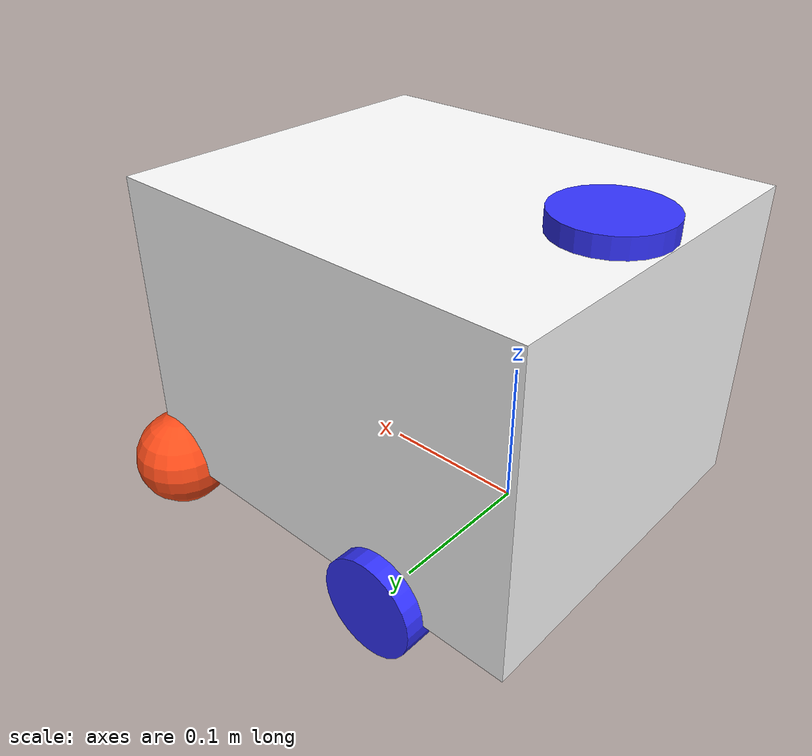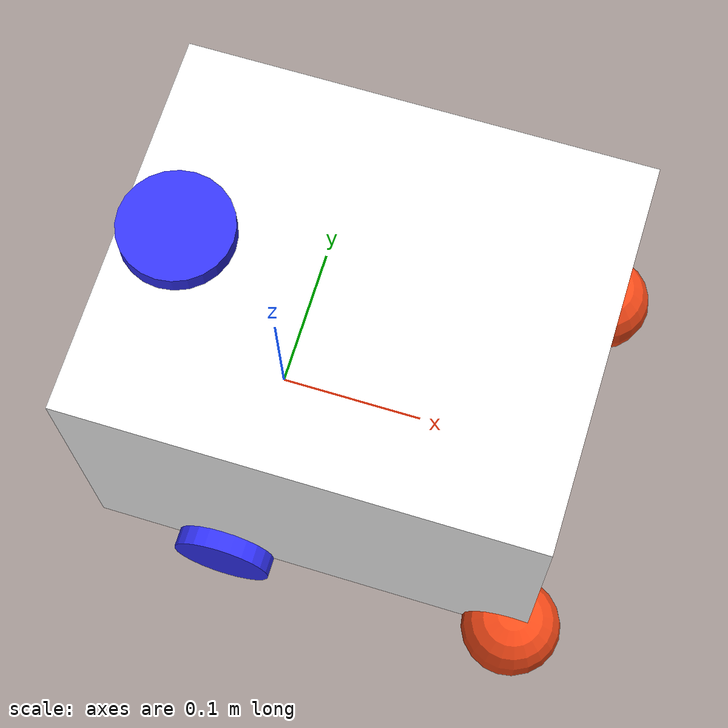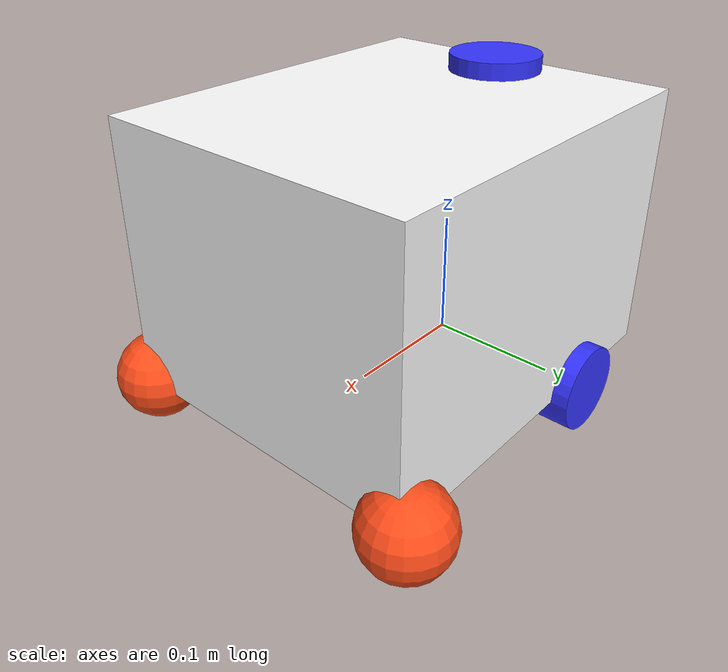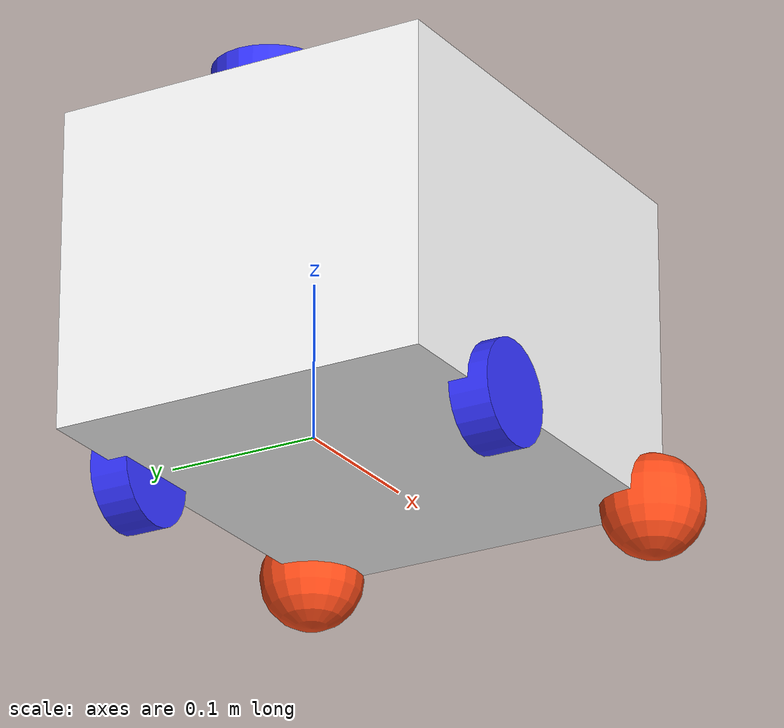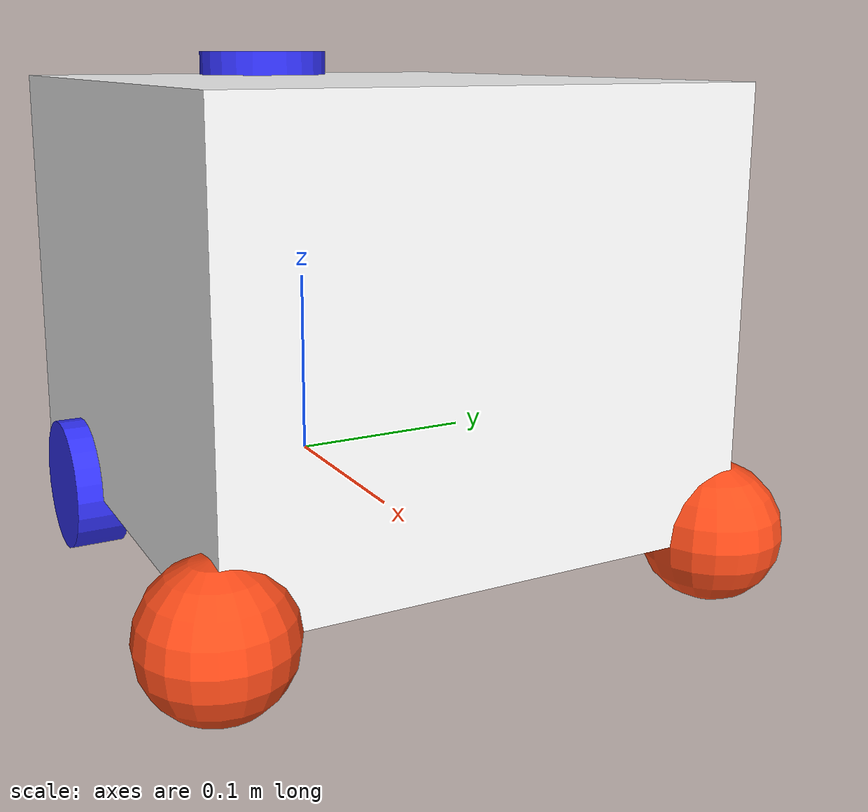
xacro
<?xml version="1.0"?>
<robot xmlns:xacro="http://www.ros.org/wiki/xacro"  name="robot">
    <material name="white">
        <color rgba="1 1 1 1"/>
    </material>

    <material name="orange">
        <color rgba="1 0.3 0.1 1"/>
    </material>

    <material name="blue">
        <color rgba="0.2 0.2 1 1"/>
    </material>

    <material name="black">
        <color rgba="0 0 0 0"/>
    </material>
    <xacro:include filename="robot_core.xacro" />
    <xacro:include filename="gazebo_control.xacro"/>
    <xacro:include filename="lidar.xacro" />
</robot>

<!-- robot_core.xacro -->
<robot xmlns:xacro="http://www.ros.org/wiki/xacro" name="robot">
    <xacro:include filename="inertial_macro.xacro"/> <!-- Added closing tag here -->

<!-- BASE LINK -->
    <link name='base_link'>

    </link>

<!-- CHASSIS LINK -->
    <joint name="chassis_joint" type="fixed">
        <parent link="base_link"/>
        <child link ="chassis"/>
        <origin xyz="-0.09 0 0"/>
    </joint>

    <link name='chassis'>
        <visual>
            <origin xyz="0.15 0 0.1045"/>
            <geometry>
                <box size="0.3 0.25 0.209"/>
            </geometry>
            <material name='white'/>
        </visual>
        <collision>
            <origin xyz="0.15 0 0.1045"/>
            <geometry>
                <box size="0.3 0.25 0.209"/>
            </geometry>
        </collision>
        <xacro:inertial_box mass="1" x="0.3" y="0.25" z="0.15">
            <origin xyz="0.15 0 0.077" rpy="0 0 0"/>
        </xacro:inertial_box>
    </link>
    <gazebo reference="chassis">
        <material>Gazebo/White</material>
    </gazebo>

<!-- LEFT WHEEL LINK -->

    <joint name="left_wheel_joint" type="continuous">
        <parent link="base_link"/>
        <child link ="left_wheel"/>
        <origin xyz="0 0.125 0" rpy="${pi/2} 0 0"/>
        <axis xyz="0 0 -1"/>
    </joint>

    <link name='left_wheel'>
        <visual>
            <geometry>
                <cylinder radius="0.0335" length="0.026"/>
            </geometry>
            <material name='blue'/>
        </visual>
        <collision>
            <geometry>
                <cylinder radius="0.0335" length="0.026"/>
            </geometry>
        </collision>
        <xacro:inertial_cylinder mass="0.1" length="0.026" radius="0.0335">
            <origin xyz="0 0 0" rpy="0 0 0"/>
        </xacro:inertial_cylinder>
    </link>
    <gazebo reference="left_wheel">
        <material>Gazebo/Blue</material>
    </gazebo>

<!-- RIGHT WHEEL LINK -->
    <joint name="right_wheel_joint" type="continuous">
        <parent link="base_link"/>
        <child link ="right_wheel"/>
        <origin xyz="0 -0.125 0" rpy="-${pi/2} 0 0"/>
        <axis xyz="0 0 1"/>
    </joint>

    <link name='right_wheel'>
        <visual>
            <geometry>
                <cylinder radius="0.0335" length="0.026"/>
            </geometry>
            <material name='blue'/>
        </visual>
        <collision>
            <geometry>
                <cylinder radius="0.0335" length="0.026"/>
            </geometry>
        </collision>
        <xacro:inertial_cylinder mass="0.1" length="0.026" radius="0.0335">
            <origin xyz="0 0 0" rpy="0 0 0"/>
        </xacro:inertial_cylinder>
    </link>

    <gazebo reference="right_wheel">
        <material>Gazebo/Blue</material>
    </gazebo>

<!-- LEFT CASTER WHEEL LINK -->
    <joint name="left_caster_wheel_link" type="fixed">
        <parent link="chassis"/>
        <child link ="left_caster_wheel"/>
        <origin xyz="0.29 0.123 0"/>
    </joint>

    <link name='left_caster_wheel'>
        <visual>
            <geometry>
                <sphere radius="0.0335"/>
            </geometry>
            <material name='orange'/>
        </visual>
        <collision>
            <geometry>
                <sphere radius="0.0335"/>
            </geometry>
        </collision>
        <xacro:inertial_sphere mass="0.1" radius="0.0335">
            <origin xyz="0 0 0" rpy="0 0 0"/>
        </xacro:inertial_sphere>
    </link>
    <gazebo reference="left_caster_wheel">
        <material>Gazebo/Orange</material>
        <mu1 value="0.001"/>
        <mu2 value="0.001"/>
    </gazebo>

<!-- RIGHT CASTER WHEEL LINK -->
    <joint name="right_caster_wheel_link" type="fixed">
        <parent link="chassis"/>
        <child link ="right_caster_wheel"/>
        <origin xyz="0.29 -0.123 0"/>
    </joint>

    <link name='right_caster_wheel'>
        <visual>
            <geometry>
                <sphere radius="0.0335"/>
            </geometry>
            <material name='orange'/>
        </visual>
        <collision>
            <geometry>
                <sphere radius="0.0335"/>
            </geometry>
        </collision>
        <xacro:inertial_sphere mass="0.1" radius="0.0335">
            <origin xyz="0 0 0" rpy="0 0 0"/>
        </xacro:inertial_sphere>
    </link>

    <gazebo reference="right_caster_wheel">
        <material>Gazebo/Orange</material>
        <mu1 value="0.001"/>
        <mu2 value="0.001"/>
    </gazebo>

</robot>

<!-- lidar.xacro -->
<robot xmlns:xacro="http://www.ros.org/wiki/xacro" >

    <joint name="laser_joint" type="fixed">
        <parent link="chassis"/>
        <child link="laser_frame"/>
        <origin xyz="0.0365 0 0.209" rpy="0 0 0"/>
    </joint>

    <link name="laser_frame">
        <visual>
            <geometry>
                <cylinder radius="0.036" length="0.026"/>
            </geometry>
            <material name="blue"/>
        </visual>
        <visual>
            <origin xyz="0 0 -0.05"/>
            <geometry>
                <cylinder radius="0.01" length="0.1"/>
            </geometry>
            <material name="blue"/>
        </visual>
        <collision>
            <geometry>
                <cylinder radius="0.05" length="0.04"/>
            </geometry>
        </collision>
        <xacro:inertial_cylinder mass="0.1" length="0.04" radius="0.05">
            <origin xyz="0 0 0" rpy="0 0 0"/>
        </xacro:inertial_cylinder>
    </link>

    <gazebo reference="laser_frame">
        <material>Gazebo/Black</material>

        <sensor name="laser" type="ray">
            <pose> 0 0 0 0 0 0 </pose>
            <visualize>false</visualize>
            <update_rate>10</update_rate>
            <ray>
                <scan>
                    <horizontal>
                        <samples>360</samples>
                        <min_angle>-3.14</min_angle>
                        <max_angle>3.14</max_angle>
                    </horizontal>
                </scan>
                <range>
                    <min>0.3</min>
                    <max>12</max>
                </range>
            </ray>
            <plugin name="laser_controller" filename="libgazebo_ros_ray_sensor.so">
                <ros>
                    <argument>~/out:=scan</argument>
                </ros>
                <output_type>sensor_msgs/LaserScan</output_type>
                <frame_name>laser_frame</frame_name>
            </plugin>
        </sensor>
    </gazebo>

</robot>
